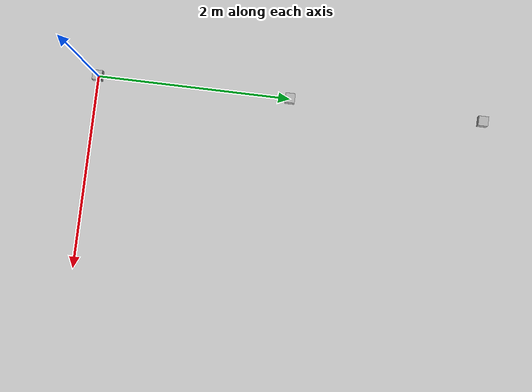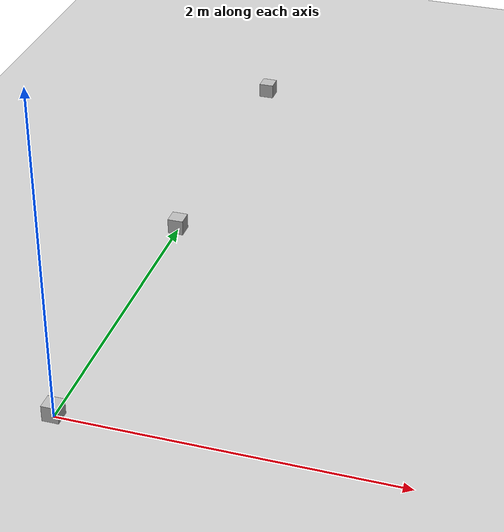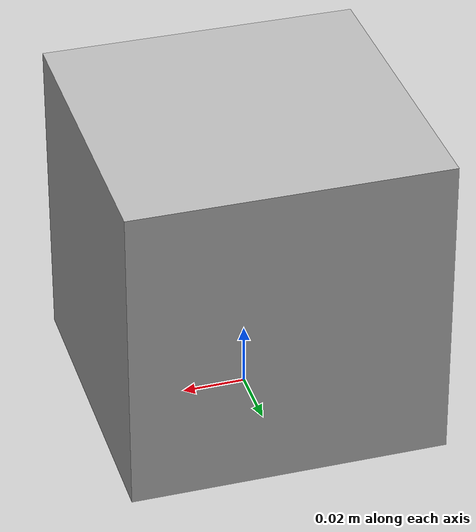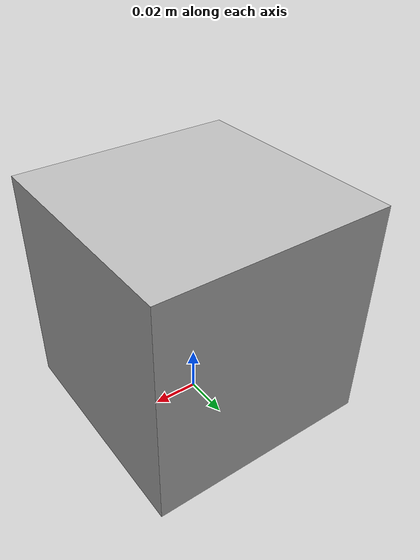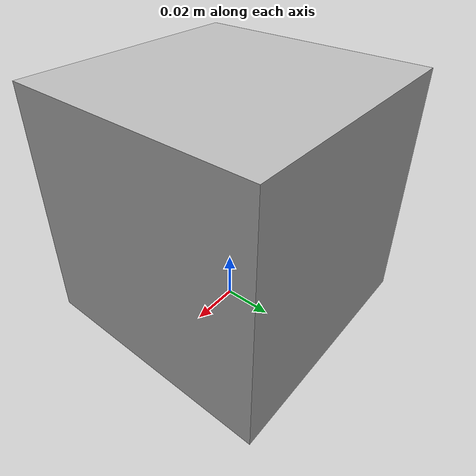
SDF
<?xml version="1.0" ?>
<sdf version="1.6">
  <world name="default">

  <!-- Light Sources -->
  <light type="directional" name="sun">
    <cast_shadows>true</cast_shadows>
    <pose>0 0 0 0.0 0.0 0.0</pose>
    <diffuse>1.0 1.0 1.0 1.0</diffuse>
    <specular>0.2 0.2 0.2 1</specular>
    <direction>-1.0 0.0 -0.2</direction>
  </light>

  <!-- spot light -->
  <light type="spot" name="spot_light">
    <pose>5 1 1 0 1.4 0</pose>
    <diffuse>1 1 1 1</diffuse>
    <specular>.2 .2 .2 1</specular>
    <attenuation>
      <range>10</range>
      <linear>0.01</linear>
      <constant>0.2</constant>
      <quadratic>0.0</quadratic>
    </attenuation>
    <direction>0 0 -1</direction>
    <spot>
      <inner_angle>0.1</inner_angle>
      <outer_angle>0.5</outer_angle>
      <falloff>1.2</falloff>
    </spot>
    <cast_shadows>false</cast_shadows>
  </light>

    <!-- A ground plane -->
    <include>
      <uri>model://ground_plane</uri>
    </include>

    <!-- camera model with lens flare plugin -->
    <model name="camera_lensflare">
      <static>true</static>
      <pose>0 0 0.05 0 0 0</pose>
      <link name="link">
        <visual name="visual">
          <geometry>
            <box>
              <size>0.1 0.1 0.1</size>
            </box>
          </geometry>
        </visual>
        <sensor name="camera_sensor_lensflare" type="camera">
          <camera>
            <horizontal_fov>0.78539816339744828</horizontal_fov>
            <image>
              <width>320</width>
              <height>240</height>
            </image>
            <clip>
              <near>0.1</near>
              <far>100</far>
            </clip>
          </camera>
          <always_on>1</always_on>
          <update_rate>30</update_rate>
          <visualize>true</visualize>
          <plugin name="lensflare" filename="libLensFlareSensorPlugin.so"/>
        </sensor>
      </link>
    </model>

    <!-- camera model with lens flare plugin and scale applied -->
    <model name="camera_lensflare_scaled">
      <static>true</static>
      <pose>0 0 0.05 0 0 0</pose>
      <link name="link">
        <visual name="visual">
          <geometry>
            <box>
              <size>0.1 0.1 0.1</size>
            </box>
          </geometry>
        </visual>
        <sensor name="camera_sensor_lensflare_scaled" type="camera">
          <camera>
            <horizontal_fov>0.78539816339744828</horizontal_fov>
            <image>
              <width>320</width>
              <height>240</height>
            </image>
            <clip>
              <near>0.1</near>
              <far>100</far>
            </clip>
          </camera>
          <always_on>1</always_on>
          <update_rate>30</update_rate>
          <visualize>true</visualize>
          <plugin name="lensflare" filename="libLensFlareSensorPlugin.so">
            <scale>0.1</scale>
          </plugin>
        </sensor>
      </link>
    </model>

    <!-- camera model with lens flare plugin that uses the spot light -->
    <model name="camera_lensflare_spot">
      <static>true</static>
      <pose>0 0 0.05 0 0 0</pose>
      <link name="link">
        <visual name="visual">
          <geometry>
            <box>
              <size>0.1 0.1 0.1</size>
            </box>
          </geometry>
        </visual>
        <sensor name="camera_sensor_lensflare_spot" type="camera">
          <camera>
            <horizontal_fov>0.78539816339744828</horizontal_fov>
            <image>
              <width>320</width>
              <height>240</height>
            </image>
            <clip>
              <near>0.1</near>
              <far>100</far>
            </clip>
          </camera>
          <always_on>1</always_on>
          <update_rate>30</update_rate>
          <visualize>true</visualize>
          <plugin name="lensflare" filename="libLensFlareSensorPlugin.so">
            <light_name>spot_light</light_name>
          </plugin>
        </sensor>
      </link>
    </model>

    <!-- wide-angle camera model with lens flare plugin -->
    <model name="wide_angle_camera_lensflare">
      <static>true</static>
      <pose>0 2 0.05 0 0 0</pose>
      <link name="link">
        <visual name="visual">
          <geometry>
            <box>
              <size>0.1 0.1 0.1</size>
            </box>
          </geometry>
        </visual>
        <sensor name="camera" type="wideanglecamera">
          <camera>
            <horizontal_fov>1.047</horizontal_fov>
            <image>
              <width>320</width>
              <height>240</height>
            </image>
            <clip>
              <near>0.1</near>
              <far>100</far>
            </clip>
            <lens>
              <type>gnomonical</type>
              <scale_to_hfov>true</scale_to_hfov>
              <cutoff_angle>1.5707</cutoff_angle>
              <env_texture_size>512</env_texture_size>
            </lens>
          </camera>
          <always_on>1</always_on>
          <update_rate>30</update_rate>
          <visualize>true</visualize>
          <plugin name="lensflare" filename="libLensFlareSensorPlugin.so"/>
        </sensor>
      </link>
    </model>

    <!-- multi-camera model with lens flare plugin -->
    <model name="multi_camera_lensflare">
      <static>true</static>
      <pose>0 4 0.05 0 0 0</pose>
      <link name="link">
        <visual name="visual">
          <geometry>
            <box>
              <size>0.1 0.1 0.1</size>
            </box>
          </geometry>
        </visual>
        <sensor type="multicamera" name="stereo_camera">
          <update_rate>30.0</update_rate>
          <camera name="left">
            <horizontal_fov>1.3962634</horizontal_fov>
            <image>
              <width>800</width>
              <height>800</height>
              <format>R8G8B8</format>
            </image>
            <clip>
              <near>0.02</near>
              <far>300</far>
            </clip>
          </camera>
          <camera name="right">
            <pose>0 -0.07 0 0 0 0</pose>
            <horizontal_fov>1.3962634</horizontal_fov>
            <image>
              <width>800</width>
              <height>800</height>
              <format>R8G8B8</format>
            </image>
            <clip>
              <near>0.02</near>
              <far>300</far>
            </clip>
          </camera>
          <visualize>true</visualize>
          <plugin name="lensflare" filename="libLensFlareSensorPlugin.so"/>
        </sensor>
      </link>
    </model>

  </world>
</sdf>
